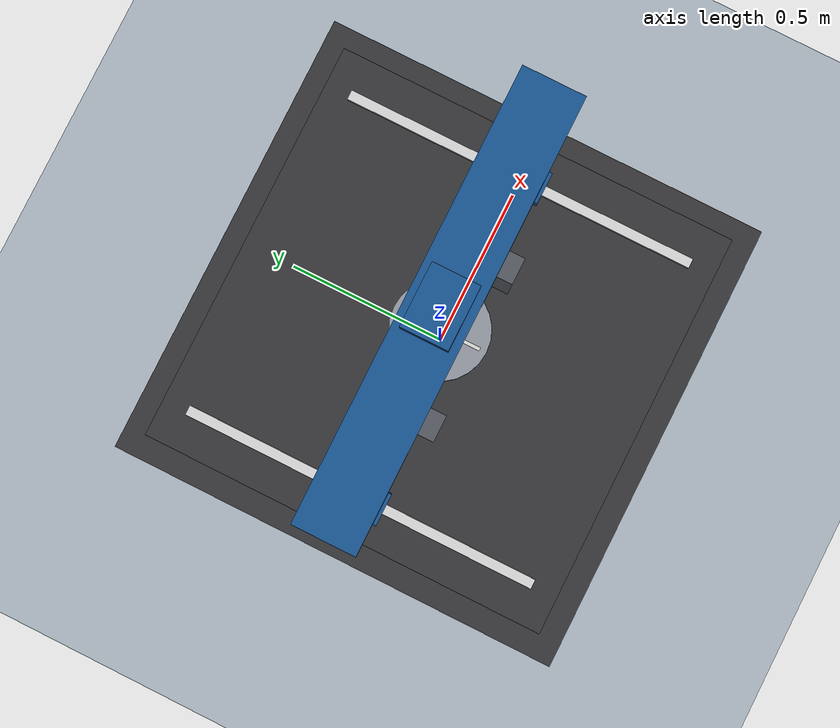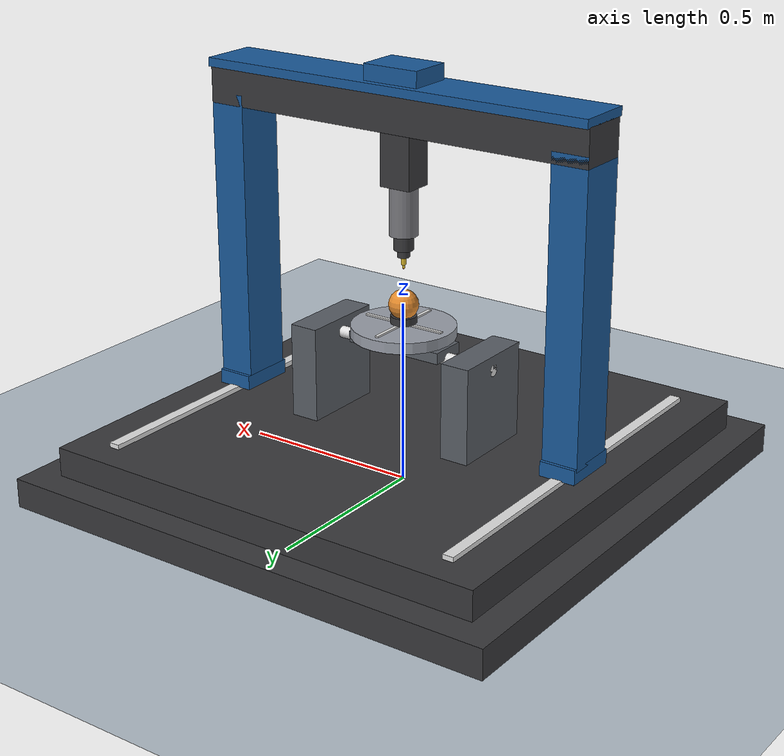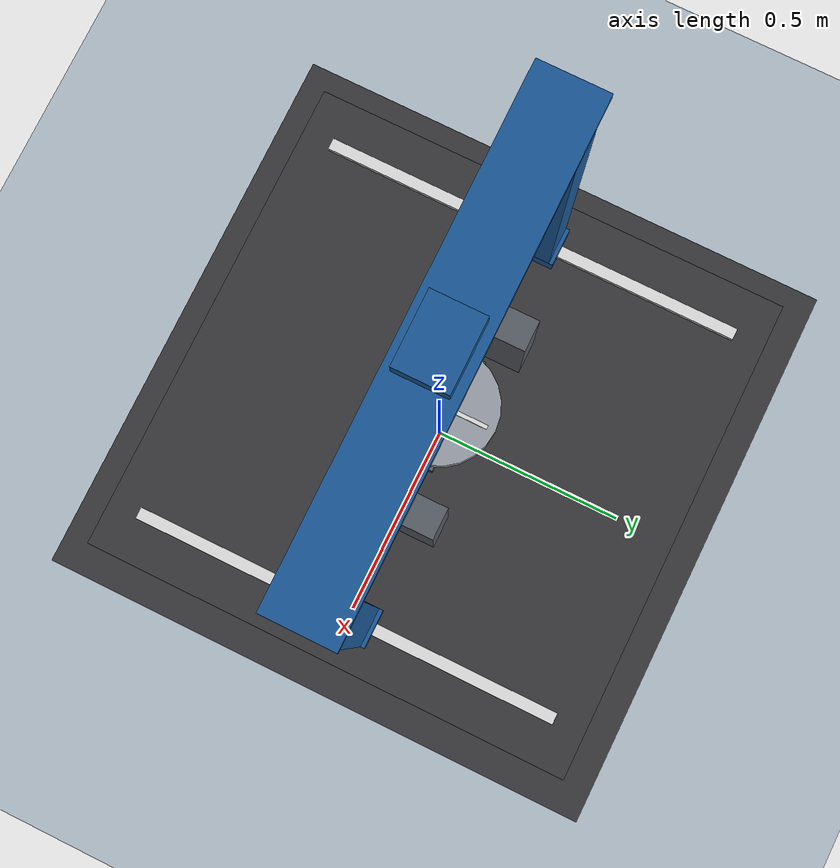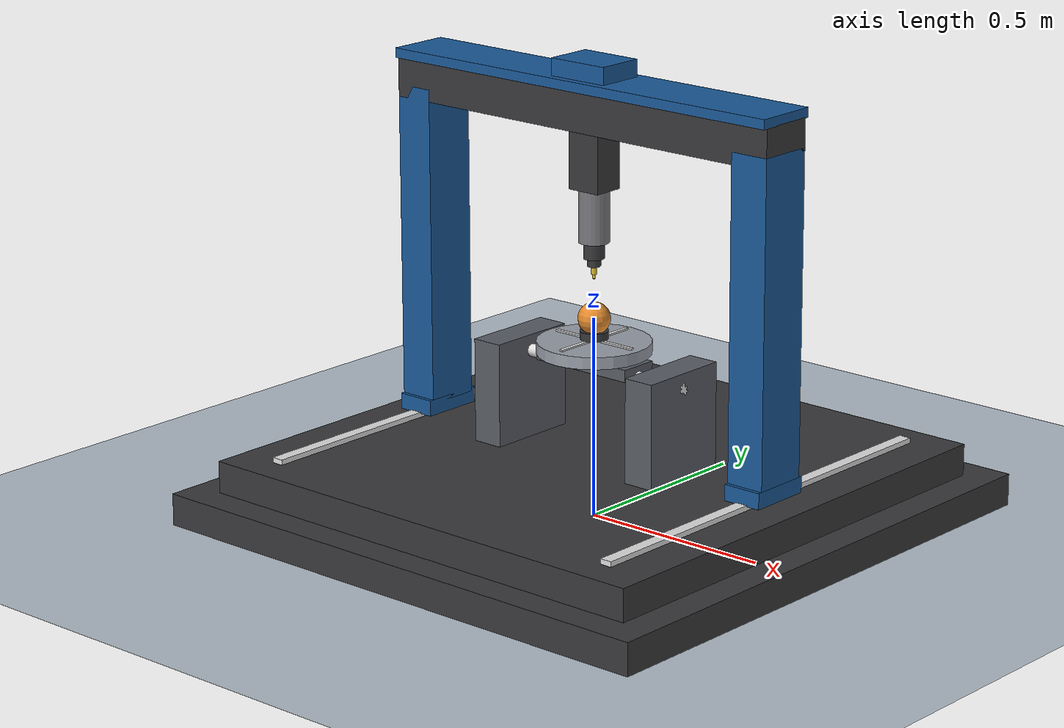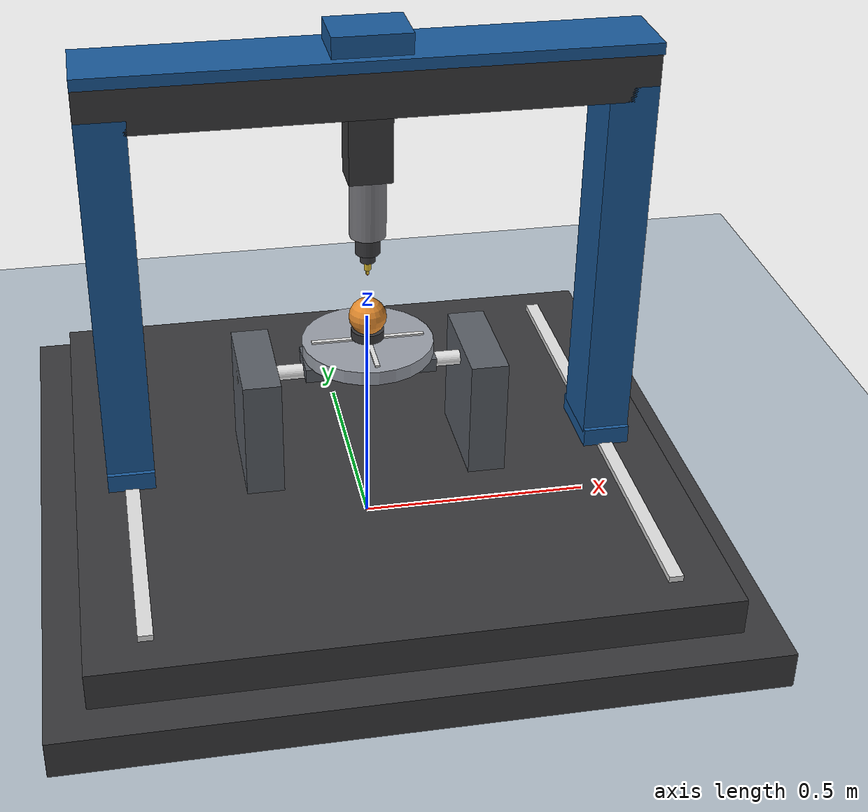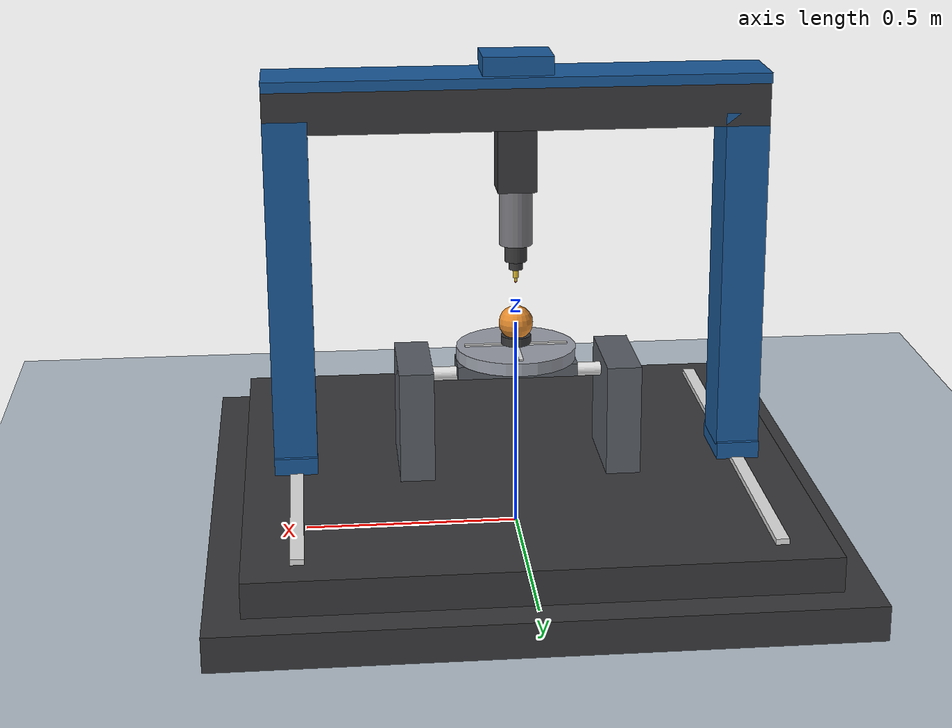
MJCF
<mujoco model="zrcs_5axis_cnc_xyzac">
  <compiler angle="radian" autolimits="true"/>

  <option timestep="0.001" gravity="0 0 -9.81"/>

  <visual>
    <global offwidth="1920" offheight="1080"/>
    <quality shadowsize="4096" offsamples="4"/>
    <headlight ambient="0.40 0.40 0.40" diffuse="0.65 0.65 0.65" specular="0.30 0.30 0.30"/>
    <map znear="0.01"/>
    <rgba haze="0.78 0.82 0.88 1"/>
  </visual>

  <statistic center="0 0 0.40" extent="1.80" meansize="0.05"/>

  <default>
    <joint damping="6" armature="0.02"/>
    <!-- visual-only: disable structural self-collision -->
    <geom contype="0" conaffinity="0" friction="0.45 0.02 0.001"/>
  </default>

  <asset>
    <texture name="sky" type="skybox" builtin="gradient" width="512" height="512"
             rgb1="0.72 0.78 0.86" rgb2="0.94 0.96 0.98"/>
    <texture name="grid" type="2d" builtin="checker" width="512" height="512"
             rgb1="0.62 0.67 0.72" rgb2="0.78 0.82 0.86"/>
    <material name="floor_grid" texture="grid" texrepeat="10 10" reflectance="0.16"/>
    <material name="cast_iron" rgba="0.22 0.22 0.23 1" specular="0.35" shininess="0.50"/>
    <material name="blue_cover" rgba="0.10 0.35 0.60 1" specular="0.45" shininess="0.60"/>
    <material name="rail_mat" rgba="0.88 0.88 0.88 1" specular="0.78" shininess="0.88"/>
    <material name="spindle_mat" rgba="0.48 0.48 0.50 1" specular="0.58" shininess="0.72"/>
    <material name="tool_mat" rgba="0.85 0.72 0.18 1" emission="0.08" specular="0.80" shininess="0.85"/>
    <material name="trunnion_mat" rgba="0.35 0.37 0.40 1" specular="0.50" shininess="0.55"/>
    <material name="table_mat" rgba="0.60 0.62 0.66 1" specular="0.55" shininess="0.70"/>
    <material name="workpiece_mat" rgba="0.90 0.55 0.18 1" specular="0.40" shininess="0.45"/>
    <material name="accent_red" rgba="0.85 0.20 0.18 1" specular="0.40" shininess="0.40"/>
  </asset>

  <worldbody>
    <light name="key_light" pos="2.4 -2.4 3.4" dir="-0.5 0.5 -1" diffuse="1.0 0.98 0.92" specular="0.45 0.45 0.45"/>
    <light name="fill_light" pos="-2.4 1.8 2.4" dir="0.7 -0.4 -1" diffuse="0.55 0.62 0.72" specular="0.16 0.16 0.20"/>
    <camera name="overview" pos="1.70 -1.95 1.30" xyaxes="0.78 0.63 0 -0.35 0.43 0.83"/>
    <camera name="iso" pos="1.80 -1.60 1.15" xyaxes="0.66 0.75 0 -0.40 0.35 0.85"/>
    <camera name="side" pos="2.20 0 0.80" xyaxes="0 1 0 -0.30 0 0.95"/>
    <geom name="floor" type="plane" size="3.0 3.0 0.02" material="floor_grid"/>

    <body name="machine_base" pos="0 0 0">
      <geom name="pedestal" type="box" pos="0 0 0.04" size="0.72 0.72 0.04" material="cast_iron"/>
      <geom name="bed" type="box" pos="0 0 0.12" size="0.64 0.64 0.04" material="cast_iron"/>

      <geom name="y_rail_left"  type="box" pos="-0.52 0 0.165" size="0.015 0.56 0.008" material="rail_mat"/>
      <geom name="y_rail_right" type="box" pos=" 0.52 0 0.165" size="0.015 0.56 0.008" material="rail_mat"/>

      <!-- Fixed cheeks on bed; inner face spacing 0.40 > disk diameter 0.28 -->
      <geom name="cradle_left"  type="box" pos="-0.24 0 0.27" size="0.040 0.12 0.15" material="trunnion_mat"/>
      <geom name="cradle_right" type="box" pos=" 0.24 0 0.27" size="0.040 0.12 0.15" material="trunnion_mat"/>
      <geom name="a_shaft" type="cylinder" pos="0 0 0.38" size="0.016 0.28" euler="0 1.5708 0" material="rail_mat"/>

      <!-- A/C: only bridge + platter + part tilt/spin -->
      <body name="trunnion_a" pos="0 0 0.38">
        <joint name="a_hinge" type="hinge" axis="1 0 0" range="-1.920 1.920" damping="8" armature="0.05"/>
        <geom name="cradle_bridge" type="box" pos="0 0 0.015" size="0.14 0.05 0.015" material="trunnion_mat"/>

        <!-- low-profile platter: center 50 mm above A pivot -->
        <body name="table_c" pos="0 0 0.05">
          <joint name="c_hinge" type="hinge" axis="0 0 1" range="-6.2832 6.2832" damping="6" armature="0.03"/>
          <geom name="rotary_table" type="cylinder" pos="0 0 0" size="0.14 0.015" material="table_mat"/>
          <geom name="t_slot_x" type="box" pos="0 0 0.016" size="0.12 0.005 0.003" material="rail_mat"/>
          <geom name="t_slot_y" type="box" pos="0 0 0.016" size="0.005 0.12 0.003" material="rail_mat"/>
          <geom name="table_mark" type="box" pos="0.12 0 0.008" size="0.014 0.008 0.005" material="accent_red"/>

          <body name="workpiece" pos="0 0 0.055">
            <!-- pedestal under sphere -->
            <geom name="workpiece_base" type="cylinder" pos="0 0 -0.025" size="0.035 0.010" material="cast_iron"/>
            <!-- hemisphere-ish: full sphere half-sunk into base visually; radius 40 mm -->
            <geom name="workpiece_sphere" type="sphere" pos="0 0 0.015" size="0.040" material="workpiece_mat"/>
            <site name="workpiece_origin" pos="0 0 0.015" size="0.004" rgba="1 0.4 0 0.9"/>
            <!-- surface contact demo point on top of sphere (tool-normal home pose) -->
            <site name="workpiece_top" pos="0 0 0.055" size="0.003" rgba="0.2 0.9 0.3 0.9"/>
          </body>
        </body>
      </body>

      <!-- Gantry: spindle well above platter at z_joint=0 -->
      <body name="y_gantry" pos="0 0 0">
        <joint name="y_slide" type="slide" axis="0 1 0" range="-0.30 0.30" damping="6"/>

        <geom name="foot_left"  type="box" pos="-0.52 0 0.19" size="0.05 0.08 0.02" material="blue_cover"/>
        <geom name="foot_right" type="box" pos=" 0.52 0 0.19" size="0.05 0.08 0.02" material="blue_cover"/>
        <geom name="pillar_left"  type="box" pos="-0.52 0 0.60" size="0.05 0.07 0.40" material="blue_cover"/>
        <geom name="pillar_right" type="box" pos=" 0.52 0 0.60" size="0.05 0.07 0.40" material="blue_cover"/>

        <geom name="x_beam" type="box" pos="0 0 1.02" size="0.57 0.07 0.05" material="cast_iron"/>
        <geom name="x_beam_cap" type="box" pos="0 0 1.08" size="0.57 0.08 0.012" material="blue_cover"/>
        <geom name="x_rail_front" type="box" pos="0  0.035 1.075" size="0.50 0.010 0.008" material="rail_mat"/>
        <geom name="x_rail_rear"  type="box" pos="0 -0.035 1.075" size="0.50 0.010 0.008" material="rail_mat"/>

        <body name="x_carriage" pos="0 0 0">
          <joint name="x_slide" type="slide" axis="1 0 0" range="-0.40 0.40" damping="6"/>
          <geom name="x_block" type="box" pos="0 0 1.10" size="0.08 0.06 0.035" material="blue_cover"/>

          <body name="z_head" pos="0 0 0">
            <joint name="z_slide" type="slide" axis="0 0 1" range="-0.18 0.40" damping="5"/>
            <geom name="z_ram" type="box" pos="0 0 0.92" size="0.045 0.04 0.10" material="cast_iron"/>
            <geom name="spindle_housing" type="cylinder" pos="0 0 0.76" size="0.038 0.07" material="spindle_mat"/>
            <geom name="spindle_nose" type="cylinder" pos="0 0 0.67" size="0.026 0.020" material="cast_iron"/>
            <geom name="collet" type="cylinder" pos="0 0 0.64" size="0.016 0.010" material="cast_iron"/>
            <!-- tool: shank (thick upper) + flute (thin lower) -->
            <geom name="tool_shank" type="cylinder" pos="0 0 0.622" size="0.007 0.012" material="tool_mat"/>
            <geom name="tool_flute" type="cylinder" pos="0 0 0.610" size="0.0035 0.010" material="tool_mat"/>
            <site name="tool_tip" pos="0 0 0.600" size="0.003" rgba="1 0 0 0.95"/>
            <geom name="tool_tip_vis" type="sphere" pos="0 0 0.600" size="0.0028"
                  rgba="1 0.1 0.1 1"/>
          </body>
        </body>
      </body>
    </body>
  </worldbody>

  <actuator>
    <position name="act_x" joint="x_slide" kp="2e4" kv="200" ctrlrange="-0.40 0.40"/>
    <position name="act_y" joint="y_slide" kp="2e4" kv="200" ctrlrange="-0.30 0.30"/>
    <position name="act_z" joint="z_slide" kp="2e4" kv="200" ctrlrange="-0.18 0.40"/>
    <position name="act_a" joint="a_hinge" kp="5e3" kv="80" ctrlrange="-1.920 1.920"/>
    <position name="act_c" joint="c_hinge" kp="5e3" kv="80" ctrlrange="-6.2832 6.2832"/>
  </actuator>

  <sensor>
    <framepos name="tool_pos" objtype="site" objname="tool_tip"/>
    <framequat name="tool_quat" objtype="site" objname="tool_tip"/>
    <framepos name="work_pos" objtype="site" objname="workpiece_origin"/>
    <framequat name="work_quat" objtype="site" objname="workpiece_origin"/>
    <jointpos name="x_pos" joint="x_slide"/>
    <jointpos name="y_pos" joint="y_slide"/>
    <jointpos name="z_pos" joint="z_slide"/>
    <jointpos name="a_pos" joint="a_hinge"/>
    <jointpos name="c_pos" joint="c_hinge"/>
  </sensor>

  <keyframe>
    <!-- depth-first: a_hinge, c_hinge, y_slide, x_slide, z_slide -->
    <key name="home" qpos="0 0 0 0 0"/>
  </keyframe>
</mujoco>
